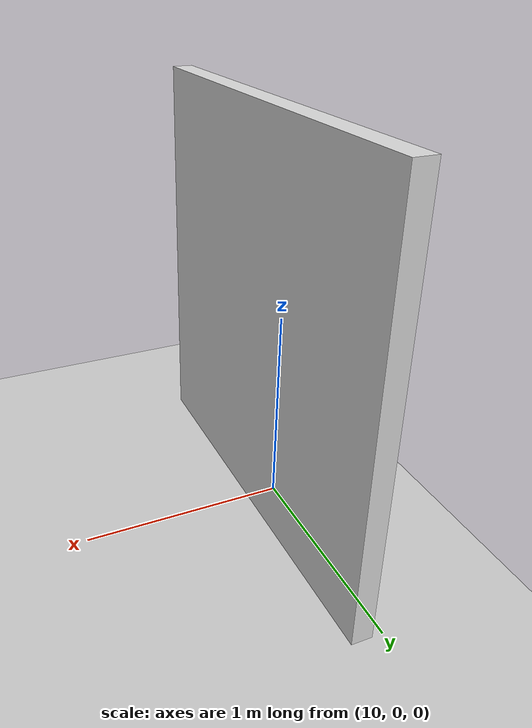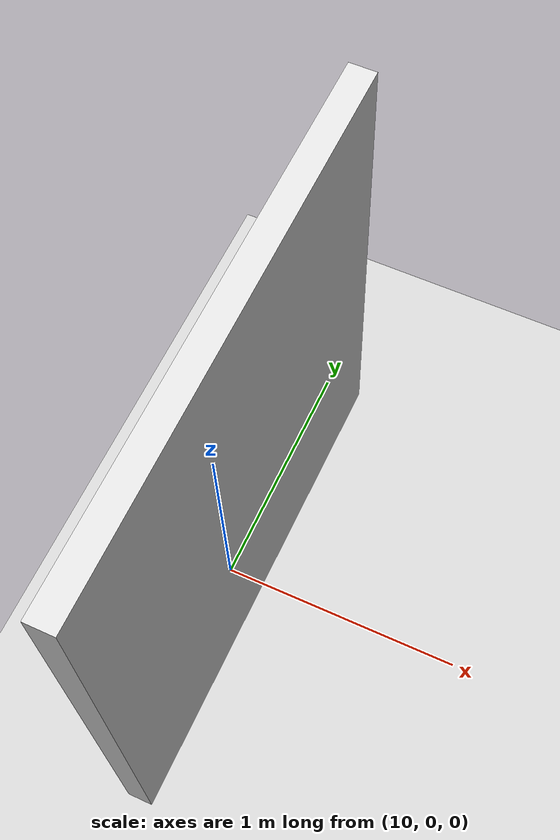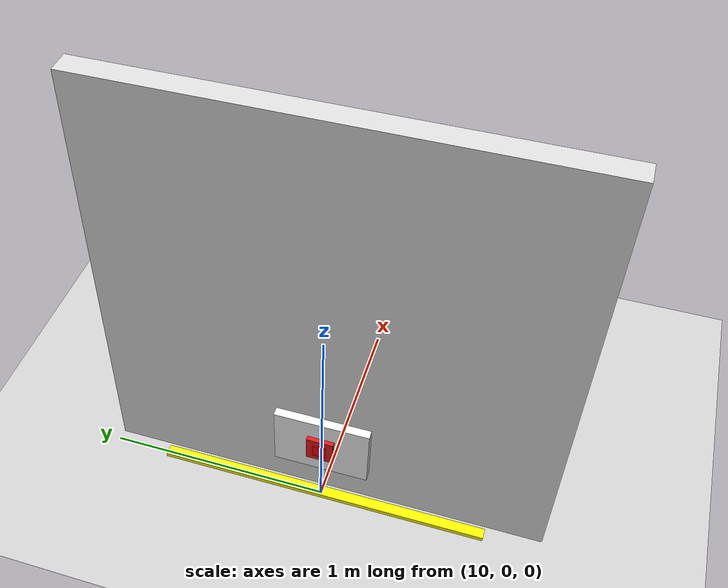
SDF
<?xml version="1.0"?>
<sdf version="1.8">
  <world name="s02_hedef_tespiti">

    <plugin filename="gz-sim-physics-system" name="gz::sim::systems::Physics"></plugin>
    <plugin filename="gz-sim-sensors-system" name="gz::sim::systems::Sensors">
      <render_engine>ogre2</render_engine>
    </plugin>
    <plugin filename="gz-sim-scene-broadcaster-system" name="gz::sim::systems::SceneBroadcaster"></plugin>
    <plugin filename="gz-sim-user-commands-system" name="gz::sim::systems::UserCommands"></plugin>

    <light name="sun" type="directional">
      <cast_shadows>true</cast_shadows>
      <pose>0 0 10 0 0 0</pose>
      <diffuse>1 1 1 1</diffuse>
      <specular>0.5 0.5 0.5 1</specular>
      <direction>-0.5 0.1 -0.9</direction>
    </light>

    <model name="ground_plane">
      <static>true</static>
      <link name="link">
        <collision name="collision">
          <geometry><plane><normal>0 0 1</normal><size>100 100</size></plane></geometry>
        </collision>
        <visual name="visual">
          <geometry><plane><normal>0 0 1</normal><size>100 100</size></plane></geometry>
          <material><ambient>0.8 0.8 0.8 1</ambient></material>
        </visual>
      </link>
    </model>

    <!-- ARKA DUVAR (hedefin arkasında destek) -->
    <model name="arka_duvar">
      <static>true</static>
      <pose>10.1 0 1.0 0 0 0</pose>
      <link name="link">
        <visual name="visual">
          <geometry><box><size>0.1 2.0 2.0</size></box></geometry>
          <material><ambient>0.85 0.85 0.85 1</ambient></material>
        </visual>
        <collision name="collision">
          <geometry><box><size>0.1 2.0 2.0</size></box></geometry>
        </collision>
      </link>
    </model>

    <!-- A3 HEDEF TAHTASI (beyaz zemin) 420x297mm -->
    <model name="hedef_tahta">
      <static>true</static>
      <pose>10.0 0 0.365 0 0 0</pose>
      <link name="link">
        <visual name="zemin_beyaz">
          <geometry><box><size>0.04 0.42 0.297</size></box></geometry>
          <material><ambient>0.95 0.95 0.95 1</ambient></material>
        </visual>
        <!-- Dis halka (kirmizi, 12cm) -->
        <visual name="halka_dis">
          <pose>-0.02 0 0 0 0 0</pose>
          <geometry><box><size>0.04 0.12 0.12</size></box></geometry>
          <material><ambient>0.9 0.1 0.1 1</ambient></material>
        </visual>
        <!-- Merkez (kirmizi, 6cm) -->
        <visual name="merkez">
          <pose>-0.025 0 0 0 0 0</pose>
          <geometry><box><size>0.04 0.06 0.06</size></box></geometry>
          <material><ambient>1.0 0.0 0.0 1</ambient></material>
        </visual>
        <collision name="collision">
          <geometry><box><size>0.04 0.42 0.297</size></box></geometry>
        </collision>
      </link>
    </model>

    <!-- MESAFE İŞARETİ (10m çizgisi) -->
    <model name="isaret_10m">
      <static>true</static>
      <pose>10 0 0.01 0 0 0</pose>
      <link name="link">
        <visual name="visual">
          <geometry><box><size>0.05 1.5 0.02</size></box></geometry>
          <material><ambient>1 1 0 1</ambient></material>
        </visual>
      </link>
    </model>

  </world>
</sdf>
